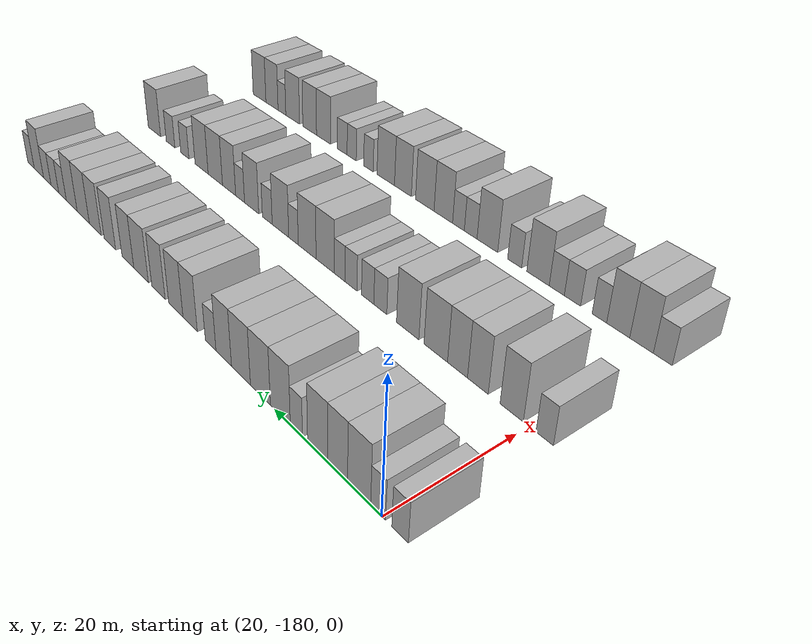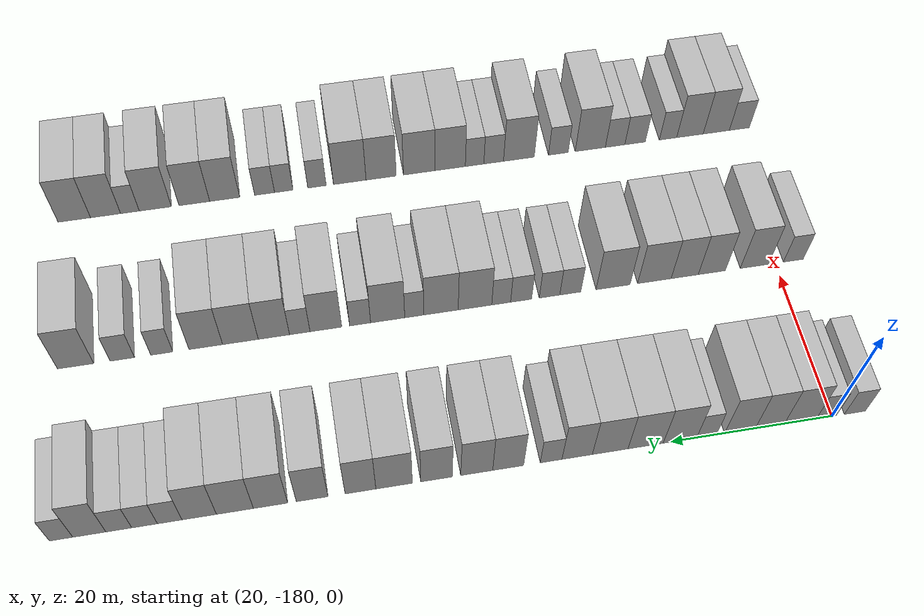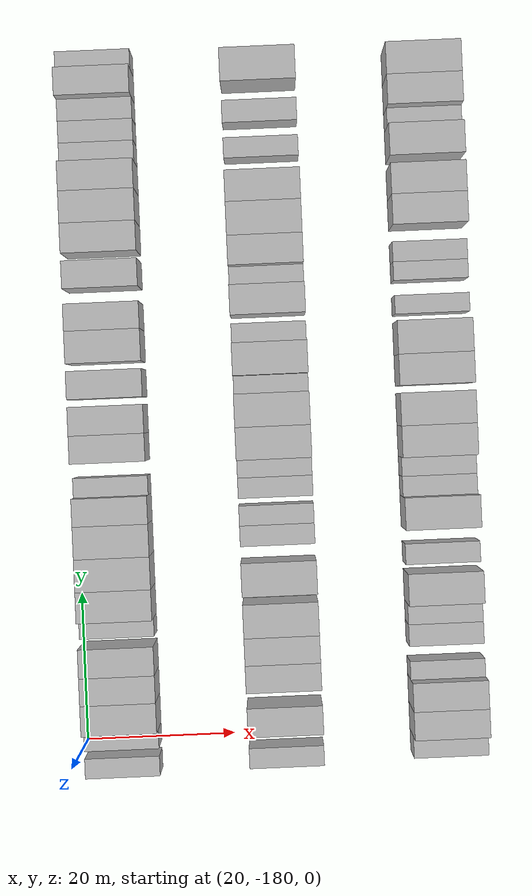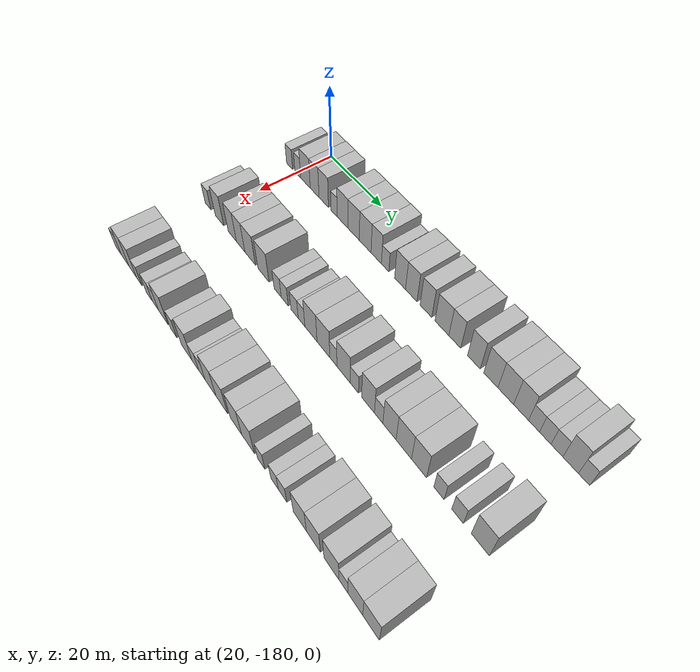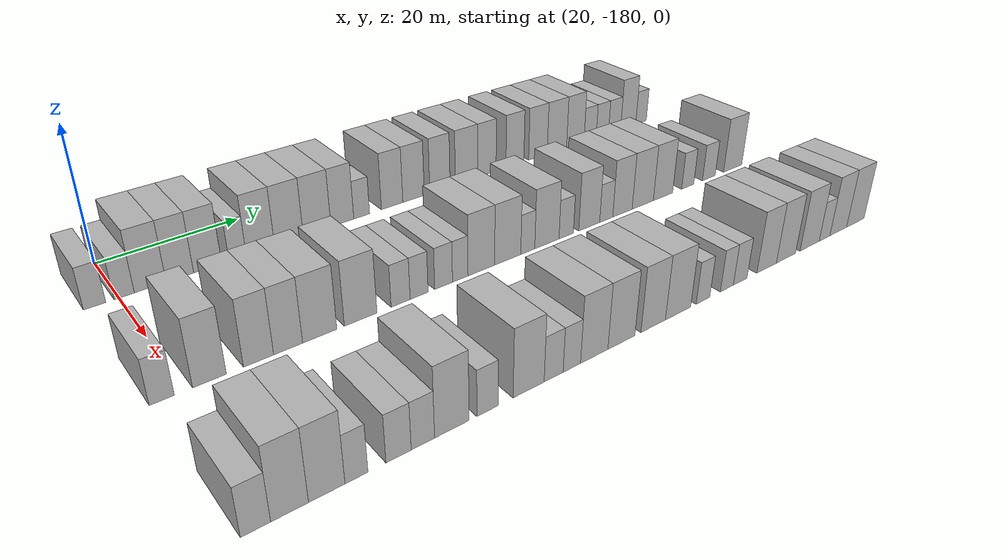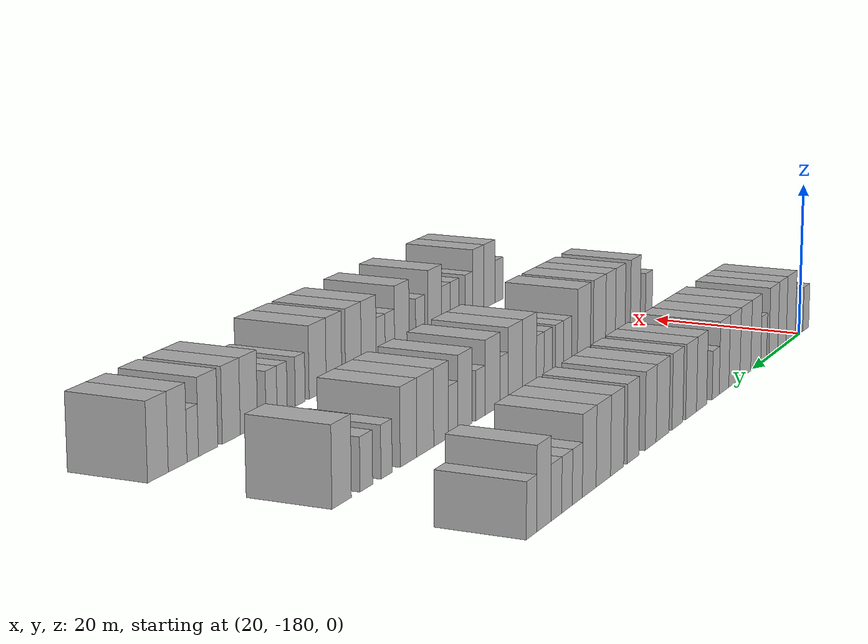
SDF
<sdf version="1.6">
 <world name="default">
  <model name="building_46">
   <static>1</static>
   <pose>25.0000 -182.8993 0 0.000000 0.000000 0.000000</pose>
   <link name="link">
    <pose>0 0 3.00 0 0 0</pose>
    <collision name="collision"><geometry><box><size>10.0000 2.6617 6.0000</size></box></geometry></collision>
    <visual name="visual">
     <cast_shadows>0</cast_shadows>
     <geometry><box><size>10.0000 2.6617 6.0000</size></box></geometry>
     <material>
      <script>
       <uri>model://HANNAS_wall/materials/scripts</uri>
       <uri>model://HANNAS_wall/materials/textures</uri>
       <name>vrc/HANNAS_wall</name>
      </script>
     </material>
    </visual>
   </link>
  </model>
  <model name="building_47">
   <static>1</static>
   <pose>25.0000 -179.3147 0 0.000000 0.000000 0.000000</pose>
   <link name="link">
    <pose>0 0 3.00 0 0 0</pose>
    <collision name="collision"><geometry><box><size>10.0000 2.5074 6.0000</size></box></geometry></collision>
    <visual name="visual">
     <cast_shadows>0</cast_shadows>
     <geometry><box><size>10.0000 2.5074 6.0000</size></box></geometry>
     <material>
      <script>
       <uri>model://HANNAS_wall/materials/scripts</uri>
       <uri>model://HANNAS_wall/materials/textures</uri>
       <name>vrc/HANNAS_wall</name>
      </script>
     </material>
    </visual>
   </link>
  </model>
  <model name="building_48">
   <static>1</static>
   <pose>25.0000 -176.0476 0 0.000000 0.000000 0.000000</pose>
   <link name="link">
    <pose>0 0 4.50 0 0 0</pose>
    <collision name="collision"><geometry><box><size>10.0000 4.0269 9.0000</size></box></geometry></collision>
    <visual name="visual">
     <cast_shadows>0</cast_shadows>
     <geometry><box><size>10.0000 4.0269 9.0000</size></box></geometry>
     <material>
      <script>
       <uri>model://HANNAS_wall/materials/scripts</uri>
       <uri>model://HANNAS_wall/materials/textures</uri>
       <name>vrc/HANNAS_wall</name>
      </script>
     </material>
    </visual>
   </link>
  </model>
  <model name="building_49">
   <static>1</static>
   <pose>25.0000 -172.2188 0 0.000000 0.000000 0.000000</pose>
   <link name="link">
    <pose>0 0 4.50 0 0 0</pose>
    <collision name="collision"><geometry><box><size>10.0000 3.6306 9.0000</size></box></geometry></collision>
    <visual name="visual">
     <cast_shadows>0</cast_shadows>
     <geometry><box><size>10.0000 3.6306 9.0000</size></box></geometry>
     <material>
      <script>
       <uri>model://HANNAS_wall/materials/scripts</uri>
       <uri>model://HANNAS_wall/materials/textures</uri>
       <name>vrc/HANNAS_wall</name>
      </script>
     </material>
    </visual>
   </link>
  </model>
  <model name="building_50">
   <static>1</static>
   <pose>25.0000 -168.4945 0 0.000000 0.000000 0.000000</pose>
   <link name="link">
    <pose>0 0 4.50 0 0 0</pose>
    <collision name="collision"><geometry><box><size>10.0000 3.8180 9.0000</size></box></geometry></collision>
    <visual name="visual">
     <cast_shadows>0</cast_shadows>
     <geometry><box><size>10.0000 3.8180 9.0000</size></box></geometry>
     <material>
      <script>
       <uri>model://HANNAS_wall/materials/scripts</uri>
       <uri>model://HANNAS_wall/materials/textures</uri>
       <name>vrc/HANNAS_wall</name>
      </script>
     </material>
    </visual>
   </link>
  </model>
  <model name="building_51">
   <static>1</static>
   <pose>25.0000 -164.3656 0 0.000000 0.000000 0.000000</pose>
   <link name="link">
    <pose>0 0 3.00 0 0 0</pose>
    <collision name="collision"><geometry><box><size>10.0000 2.4398 6.0000</size></box></geometry></collision>
    <visual name="visual">
     <cast_shadows>0</cast_shadows>
     <geometry><box><size>10.0000 2.4398 6.0000</size></box></geometry>
     <material>
      <script>
       <uri>model://HANNAS_wall/materials/scripts</uri>
       <uri>model://HANNAS_wall/materials/textures</uri>
       <name>vrc/HANNAS_wall</name>
      </script>
     </material>
    </visual>
   </link>
  </model>
  <model name="building_52">
   <static>1</static>
   <pose>25.0000 -161.0876 0 0.000000 0.000000 0.000000</pose>
   <link name="link">
    <pose>0 0 4.50 0 0 0</pose>
    <collision name="collision"><geometry><box><size>10.0000 4.1161 9.0000</size></box></geometry></collision>
    <visual name="visual">
     <cast_shadows>0</cast_shadows>
     <geometry><box><size>10.0000 4.1161 9.0000</size></box></geometry>
     <material>
      <script>
       <uri>model://HANNAS_wall/materials/scripts</uri>
       <uri>model://HANNAS_wall/materials/textures</uri>
       <name>vrc/HANNAS_wall</name>
      </script>
     </material>
    </visual>
   </link>
  </model>
  <model name="building_53">
   <static>1</static>
   <pose>25.0000 -156.8660 0 0.000000 0.000000 0.000000</pose>
   <link name="link">
    <pose>0 0 4.50 0 0 0</pose>
    <collision name="collision"><geometry><box><size>10.0000 4.3272 9.0000</size></box></geometry></collision>
    <visual name="visual">
     <cast_shadows>0</cast_shadows>
     <geometry><box><size>10.0000 4.3272 9.0000</size></box></geometry>
     <material>
      <script>
       <uri>model://HANNAS_wall/materials/scripts</uri>
       <uri>model://HANNAS_wall/materials/textures</uri>
       <name>vrc/HANNAS_wall</name>
      </script>
     </material>
    </visual>
   </link>
  </model>
  <model name="building_54">
   <static>1</static>
   <pose>25.0000 -152.5389 0 0.000000 0.000000 0.000000</pose>
   <link name="link">
    <pose>0 0 4.50 0 0 0</pose>
    <collision name="collision"><geometry><box><size>10.0000 4.3268 9.0000</size></box></geometry></collision>
    <visual name="visual">
     <cast_shadows>0</cast_shadows>
     <geometry><box><size>10.0000 4.3268 9.0000</size></box></geometry>
     <material>
      <script>
       <uri>model://HANNAS_wall/materials/scripts</uri>
       <uri>model://HANNAS_wall/materials/textures</uri>
       <name>vrc/HANNAS_wall</name>
      </script>
     </material>
    </visual>
   </link>
  </model>
  <model name="building_55">
   <static>1</static>
   <pose>25.0000 -148.5316 0 0.000000 0.000000 0.000000</pose>
   <link name="link">
    <pose>0 0 4.50 0 0 0</pose>
    <collision name="collision"><geometry><box><size>10.0000 3.6879 9.0000</size></box></geometry></collision>
    <visual name="visual">
     <cast_shadows>0</cast_shadows>
     <geometry><box><size>10.0000 3.6879 9.0000</size></box></geometry>
     <material>
      <script>
       <uri>model://HANNAS_wall/materials/scripts</uri>
       <uri>model://HANNAS_wall/materials/textures</uri>
       <name>vrc/HANNAS_wall</name>
      </script>
     </material>
    </visual>
   </link>
  </model>
  <model name="building_56">
   <static>1</static>
   <pose>25.0000 -145.3794 0 0.000000 0.000000 0.000000</pose>
   <link name="link">
    <pose>0 0 3.00 0 0 0</pose>
    <collision name="collision"><geometry><box><size>10.0000 2.6166 6.0000</size></box></geometry></collision>
    <visual name="visual">
     <cast_shadows>0</cast_shadows>
     <geometry><box><size>10.0000 2.6166 6.0000</size></box></geometry>
     <material>
      <script>
       <uri>model://HANNAS_wall/materials/scripts</uri>
       <uri>model://HANNAS_wall/materials/textures</uri>
       <name>vrc/HANNAS_wall</name>
      </script>
     </material>
    </visual>
   </link>
  </model>
  <model name="building_57">
   <static>1</static>
   <pose>25.0000 -140.2192 0 0.000000 0.000000 0.000000</pose>
   <link name="link">
    <pose>0 0 4.50 0 0 0</pose>
    <collision name="collision"><geometry><box><size>10.0000 3.7037 9.0000</size></box></geometry></collision>
    <visual name="visual">
     <cast_shadows>0</cast_shadows>
     <geometry><box><size>10.0000 3.7037 9.0000</size></box></geometry>
     <material>
      <script>
       <uri>model://HANNAS_wall/materials/scripts</uri>
       <uri>model://HANNAS_wall/materials/textures</uri>
       <name>vrc/HANNAS_wall</name>
      </script>
     </material>
    </visual>
   </link>
  </model>
  <model name="building_58">
   <static>1</static>
   <pose>25.0000 -136.4579 0 0.000000 0.000000 0.000000</pose>
   <link name="link">
    <pose>0 0 4.50 0 0 0</pose>
    <collision name="collision"><geometry><box><size>10.0000 3.8190 9.0000</size></box></geometry></collision>
    <visual name="visual">
     <cast_shadows>0</cast_shadows>
     <geometry><box><size>10.0000 3.8190 9.0000</size></box></geometry>
     <material>
      <script>
       <uri>model://HANNAS_wall/materials/scripts</uri>
       <uri>model://HANNAS_wall/materials/textures</uri>
       <name>vrc/HANNAS_wall</name>
      </script>
     </material>
    </visual>
   </link>
  </model>
  <model name="building_59">
   <static>1</static>
   <pose>25.0000 -131.6775 0 0.000000 0.000000 0.000000</pose>
   <link name="link">
    <pose>0 0 4.50 0 0 0</pose>
    <collision name="collision"><geometry><box><size>10.0000 3.7417 9.0000</size></box></geometry></collision>
    <visual name="visual">
     <cast_shadows>0</cast_shadows>
     <geometry><box><size>10.0000 3.7417 9.0000</size></box></geometry>
     <material>
      <script>
       <uri>model://HANNAS_wall/materials/scripts</uri>
       <uri>model://HANNAS_wall/materials/textures</uri>
       <name>vrc/HANNAS_wall</name>
      </script>
     </material>
    </visual>
   </link>
  </model>
  <model name="building_60">
   <static>1</static>
   <pose>25.0000 -126.6566 0 0.000000 0.000000 0.000000</pose>
   <link name="link">
    <pose>0 0 4.50 0 0 0</pose>
    <collision name="collision"><geometry><box><size>10.0000 4.3002 9.0000</size></box></geometry></collision>
    <visual name="visual">
     <cast_shadows>0</cast_shadows>
     <geometry><box><size>10.0000 4.3002 9.0000</size></box></geometry>
     <material>
      <script>
       <uri>model://HANNAS_wall/materials/scripts</uri>
       <uri>model://HANNAS_wall/materials/textures</uri>
       <name>vrc/HANNAS_wall</name>
      </script>
     </material>
    </visual>
   </link>
  </model>
  <model name="building_61">
   <static>1</static>
   <pose>25.0000 -122.7015 0 0.000000 0.000000 0.000000</pose>
   <link name="link">
    <pose>0 0 4.50 0 0 0</pose>
    <collision name="collision"><geometry><box><size>10.0000 3.6100 9.0000</size></box></geometry></collision>
    <visual name="visual">
     <cast_shadows>0</cast_shadows>
     <geometry><box><size>10.0000 3.6100 9.0000</size></box></geometry>
     <material>
      <script>
       <uri>model://HANNAS_wall/materials/scripts</uri>
       <uri>model://HANNAS_wall/materials/textures</uri>
       <name>vrc/HANNAS_wall</name>
      </script>
     </material>
    </visual>
   </link>
  </model>
  <model name="building_62">
   <static>1</static>
   <pose>25.0000 -117.0505 0 0.000000 0.000000 0.000000</pose>
   <link name="link">
    <pose>0 0 4.50 0 0 0</pose>
    <collision name="collision"><geometry><box><size>10.0000 3.6919 9.0000</size></box></geometry></collision>
    <visual name="visual">
     <cast_shadows>0</cast_shadows>
     <geometry><box><size>10.0000 3.6919 9.0000</size></box></geometry>
     <material>
      <script>
       <uri>model://HANNAS_wall/materials/scripts</uri>
       <uri>model://HANNAS_wall/materials/textures</uri>
       <name>vrc/HANNAS_wall</name>
      </script>
     </material>
    </visual>
   </link>
  </model>
  <model name="building_63">
   <static>1</static>
   <pose>25.0000 -112.2184 0 0.000000 0.000000 0.000000</pose>
   <link name="link">
    <pose>0 0 4.50 0 0 0</pose>
    <collision name="collision"><geometry><box><size>10.0000 3.9724 9.0000</size></box></geometry></collision>
    <visual name="visual">
     <cast_shadows>0</cast_shadows>
     <geometry><box><size>10.0000 3.9724 9.0000</size></box></geometry>
     <material>
      <script>
       <uri>model://HANNAS_wall/materials/scripts</uri>
       <uri>model://HANNAS_wall/materials/textures</uri>
       <name>vrc/HANNAS_wall</name>
      </script>
     </material>
    </visual>
   </link>
  </model>
  <model name="building_64">
   <static>1</static>
   <pose>25.0000 -108.1017 0 0.000000 0.000000 0.000000</pose>
   <link name="link">
    <pose>0 0 4.50 0 0 0</pose>
    <collision name="collision"><geometry><box><size>10.0000 4.2609 9.0000</size></box></geometry></collision>
    <visual name="visual">
     <cast_shadows>0</cast_shadows>
     <geometry><box><size>10.0000 4.2609 9.0000</size></box></geometry>
     <material>
      <script>
       <uri>model://HANNAS_wall/materials/scripts</uri>
       <uri>model://HANNAS_wall/materials/textures</uri>
       <name>vrc/HANNAS_wall</name>
      </script>
     </material>
    </visual>
   </link>
  </model>
  <model name="building_65">
   <static>1</static>
   <pose>25.0000 -104.0001 0 0.000000 0.000000 0.000000</pose>
   <link name="link">
    <pose>0 0 4.50 0 0 0</pose>
    <collision name="collision"><geometry><box><size>10.0000 3.9425 9.0000</size></box></geometry></collision>
    <visual name="visual">
     <cast_shadows>0</cast_shadows>
     <geometry><box><size>10.0000 3.9425 9.0000</size></box></geometry>
     <material>
      <script>
       <uri>model://HANNAS_wall/materials/scripts</uri>
       <uri>model://HANNAS_wall/materials/textures</uri>
       <name>vrc/HANNAS_wall</name>
      </script>
     </material>
    </visual>
   </link>
  </model>
  <model name="building_66">
   <static>1</static>
   <pose>25.0000 -100.6204 0 0.000000 0.000000 0.000000</pose>
   <link name="link">
    <pose>0 0 3.00 0 0 0</pose>
    <collision name="collision"><geometry><box><size>10.0000 2.8168 6.0000</size></box></geometry></collision>
    <visual name="visual">
     <cast_shadows>0</cast_shadows>
     <geometry><box><size>10.0000 2.8168 6.0000</size></box></geometry>
     <material>
      <script>
       <uri>model://HANNAS_wall/materials/scripts</uri>
       <uri>model://HANNAS_wall/materials/textures</uri>
       <name>vrc/HANNAS_wall</name>
      </script>
     </material>
    </visual>
   </link>
  </model>
  <model name="building_67">
   <static>1</static>
   <pose>25.0000 -97.7553 0 0.000000 0.000000 0.000000</pose>
   <link name="link">
    <pose>0 0 3.00 0 0 0</pose>
    <collision name="collision"><geometry><box><size>10.0000 2.9135 6.0000</size></box></geometry></collision>
    <visual name="visual">
     <cast_shadows>0</cast_shadows>
     <geometry><box><size>10.0000 2.9135 6.0000</size></box></geometry>
     <material>
      <script>
       <uri>model://HANNAS_wall/materials/scripts</uri>
       <uri>model://HANNAS_wall/materials/textures</uri>
       <name>vrc/HANNAS_wall</name>
      </script>
     </material>
    </visual>
   </link>
  </model>
  <model name="building_68">
   <static>1</static>
   <pose>25.0000 -94.8350 0 0.000000 0.000000 0.000000</pose>
   <link name="link">
    <pose>0 0 3.00 0 0 0</pose>
    <collision name="collision"><geometry><box><size>10.0000 2.9271 6.0000</size></box></geometry></collision>
    <visual name="visual">
     <cast_shadows>0</cast_shadows>
     <geometry><box><size>10.0000 2.9271 6.0000</size></box></geometry>
     <material>
      <script>
       <uri>model://HANNAS_wall/materials/scripts</uri>
       <uri>model://HANNAS_wall/materials/textures</uri>
       <name>vrc/HANNAS_wall</name>
      </script>
     </material>
    </visual>
   </link>
  </model>
  <model name="building_69">
   <static>1</static>
   <pose>25.0000 -91.5054 0 0.000000 0.000000 0.000000</pose>
   <link name="link">
    <pose>0 0 4.50 0 0 0</pose>
    <collision name="collision"><geometry><box><size>10.0000 3.7321 9.0000</size></box></geometry></collision>
    <visual name="visual">
     <cast_shadows>0</cast_shadows>
     <geometry><box><size>10.0000 3.7321 9.0000</size></box></geometry>
     <material>
      <script>
       <uri>model://HANNAS_wall/materials/scripts</uri>
       <uri>model://HANNAS_wall/materials/textures</uri>
       <name>vrc/HANNAS_wall</name>
      </script>
     </material>
    </visual>
   </link>
  </model>
  <model name="building_70">
   <static>1</static>
   <pose>25.0000 -88.3182 0 0.000000 0.000000 0.000000</pose>
   <link name="link">
    <pose>0 0 3.00 0 0 0</pose>
    <collision name="collision"><geometry><box><size>10.0000 2.6423 6.0000</size></box></geometry></collision>
    <visual name="visual">
     <cast_shadows>0</cast_shadows>
     <geometry><box><size>10.0000 2.6423 6.0000</size></box></geometry>
     <material>
      <script>
       <uri>model://HANNAS_wall/materials/scripts</uri>
       <uri>model://HANNAS_wall/materials/textures</uri>
       <name>vrc/HANNAS_wall</name>
      </script>
     </material>
    </visual>
   </link>
  </model>
  <model name="building_238">
   <static>1</static>
   <pose>47.0000 -182.4558 0 0.000000 0.000000 0.000000</pose>
   <link name="link">
    <pose>0 0 3.00 0 0 0</pose>
    <collision name="collision"><geometry><box><size>10.0000 2.6961 6.0000</size></box></geometry></collision>
    <visual name="visual">
     <cast_shadows>0</cast_shadows>
     <geometry><box><size>10.0000 2.6961 6.0000</size></box></geometry>
     <material>
      <script>
       <uri>model://HANNAS_wall/materials/scripts</uri>
       <uri>model://HANNAS_wall/materials/textures</uri>
       <name>vrc/HANNAS_wall</name>
      </script>
     </material>
    </visual>
   </link>
  </model>
  <model name="building_239">
   <static>1</static>
   <pose>47.0000 -177.1988 0 0.000000 0.000000 0.000000</pose>
   <link name="link">
    <pose>0 0 4.50 0 0 0</pose>
    <collision name="collision"><geometry><box><size>10.0000 3.8179 9.0000</size></box></geometry></collision>
    <visual name="visual">
     <cast_shadows>0</cast_shadows>
     <geometry><box><size>10.0000 3.8179 9.0000</size></box></geometry>
     <material>
      <script>
       <uri>model://HANNAS_wall/materials/scripts</uri>
       <uri>model://HANNAS_wall/materials/textures</uri>
       <name>vrc/HANNAS_wall</name>
      </script>
     </material>
    </visual>
   </link>
  </model>
  <model name="building_240">
   <static>1</static>
   <pose>47.0000 -171.4779 0 0.000000 0.000000 0.000000</pose>
   <link name="link">
    <pose>0 0 4.50 0 0 0</pose>
    <collision name="collision"><geometry><box><size>10.0000 3.6240 9.0000</size></box></geometry></collision>
    <visual name="visual">
     <cast_shadows>0</cast_shadows>
     <geometry><box><size>10.0000 3.6240 9.0000</size></box></geometry>
     <material>
      <script>
       <uri>model://HANNAS_wall/materials/scripts</uri>
       <uri>model://HANNAS_wall/materials/textures</uri>
       <name>vrc/HANNAS_wall</name>
      </script>
     </material>
    </visual>
   </link>
  </model>
  <model name="building_241">
   <static>1</static>
   <pose>47.0000 -167.8575 0 0.000000 0.000000 0.000000</pose>
   <link name="link">
    <pose>0 0 4.50 0 0 0</pose>
    <collision name="collision"><geometry><box><size>10.0000 3.6168 9.0000</size></box></geometry></collision>
    <visual name="visual">
     <cast_shadows>0</cast_shadows>
     <geometry><box><size>10.0000 3.6168 9.0000</size></box></geometry>
     <material>
      <script>
       <uri>model://HANNAS_wall/materials/scripts</uri>
       <uri>model://HANNAS_wall/materials/textures</uri>
       <name>vrc/HANNAS_wall</name>
      </script>
     </material>
    </visual>
   </link>
  </model>
  <model name="building_242">
   <static>1</static>
   <pose>47.0000 -163.8237 0 0.000000 0.000000 0.000000</pose>
   <link name="link">
    <pose>0 0 4.50 0 0 0</pose>
    <collision name="collision"><geometry><box><size>10.0000 4.4508 9.0000</size></box></geometry></collision>
    <visual name="visual">
     <cast_shadows>0</cast_shadows>
     <geometry><box><size>10.0000 4.4508 9.0000</size></box></geometry>
     <material>
      <script>
       <uri>model://HANNAS_wall/materials/scripts</uri>
       <uri>model://HANNAS_wall/materials/textures</uri>
       <name>vrc/HANNAS_wall</name>
      </script>
     </material>
    </visual>
   </link>
  </model>
  <model name="building_243">
   <static>1</static>
   <pose>47.0000 -158.3575 0 0.000000 0.000000 0.000000</pose>
   <link name="link">
    <pose>0 0 4.50 0 0 0</pose>
    <collision name="collision"><geometry><box><size>10.0000 4.4817 9.0000</size></box></geometry></collision>
    <visual name="visual">
     <cast_shadows>0</cast_shadows>
     <geometry><box><size>10.0000 4.4817 9.0000</size></box></geometry>
     <material>
      <script>
       <uri>model://HANNAS_wall/materials/scripts</uri>
       <uri>model://HANNAS_wall/materials/textures</uri>
       <name>vrc/HANNAS_wall</name>
      </script>
     </material>
    </visual>
   </link>
  </model>
  <model name="building_244">
   <static>1</static>
   <pose>47.0000 -152.7361 0 0.000000 0.000000 0.000000</pose>
   <link name="link">
    <pose>0 0 3.00 0 0 0</pose>
    <collision name="collision"><geometry><box><size>10.0000 2.7611 6.0000</size></box></geometry></collision>
    <visual name="visual">
     <cast_shadows>0</cast_shadows>
     <geometry><box><size>10.0000 2.7611 6.0000</size></box></geometry>
     <material>
      <script>
       <uri>model://HANNAS_wall/materials/scripts</uri>
       <uri>model://HANNAS_wall/materials/textures</uri>
       <name>vrc/HANNAS_wall</name>
      </script>
     </material>
    </visual>
   </link>
  </model>
  <model name="building_245">
   <static>1</static>
   <pose>47.0000 -150.0182 0 0.000000 0.000000 0.000000</pose>
   <link name="link">
    <pose>0 0 3.00 0 0 0</pose>
    <collision name="collision"><geometry><box><size>10.0000 2.6747 6.0000</size></box></geometry></collision>
    <visual name="visual">
     <cast_shadows>0</cast_shadows>
     <geometry><box><size>10.0000 2.6747 6.0000</size></box></geometry>
     <material>
      <script>
       <uri>model://HANNAS_wall/materials/scripts</uri>
       <uri>model://HANNAS_wall/materials/textures</uri>
       <name>vrc/HANNAS_wall</name>
      </script>
     </material>
    </visual>
   </link>
  </model>
  <model name="building_246">
   <static>1</static>
   <pose>47.0000 -146.3150 0 0.000000 0.000000 0.000000</pose>
   <link name="link">
    <pose>0 0 3.00 0 0 0</pose>
    <collision name="collision"><geometry><box><size>10.0000 2.7317 6.0000</size></box></geometry></collision>
    <visual name="visual">
     <cast_shadows>0</cast_shadows>
     <geometry><box><size>10.0000 2.7317 6.0000</size></box></geometry>
     <material>
      <script>
       <uri>model://HANNAS_wall/materials/scripts</uri>
       <uri>model://HANNAS_wall/materials/textures</uri>
       <name>vrc/HANNAS_wall</name>
      </script>
     </material>
    </visual>
   </link>
  </model>
  <model name="building_247">
   <static>1</static>
   <pose>47.0000 -143.7293 0 0.000000 0.000000 0.000000</pose>
   <link name="link">
    <pose>0 0 3.00 0 0 0</pose>
    <collision name="collision"><geometry><box><size>10.0000 2.4397 6.0000</size></box></geometry></collision>
    <visual name="visual">
     <cast_shadows>0</cast_shadows>
     <geometry><box><size>10.0000 2.4397 6.0000</size></box></geometry>
     <material>
      <script>
       <uri>model://HANNAS_wall/materials/scripts</uri>
       <uri>model://HANNAS_wall/materials/textures</uri>
       <name>vrc/HANNAS_wall</name>
      </script>
     </material>
    </visual>
   </link>
  </model>
  <model name="building_248">
   <static>1</static>
   <pose>47.0000 -140.3393 0 0.000000 0.000000 0.000000</pose>
   <link name="link">
    <pose>0 0 4.50 0 0 0</pose>
    <collision name="collision"><geometry><box><size>10.0000 4.3402 9.0000</size></box></geometry></collision>
    <visual name="visual">
     <cast_shadows>0</cast_shadows>
     <geometry><box><size>10.0000 4.3402 9.0000</size></box></geometry>
     <material>
      <script>
       <uri>model://HANNAS_wall/materials/scripts</uri>
       <uri>model://HANNAS_wall/materials/textures</uri>
       <name>vrc/HANNAS_wall</name>
      </script>
     </material>
    </visual>
   </link>
  </model>
  <model name="building_249">
   <static>1</static>
   <pose>47.0000 -135.9566 0 0.000000 0.000000 0.000000</pose>
   <link name="link">
    <pose>0 0 4.50 0 0 0</pose>
    <collision name="collision"><geometry><box><size>10.0000 4.4250 9.0000</size></box></geometry></collision>
    <visual name="visual">
     <cast_shadows>0</cast_shadows>
     <geometry><box><size>10.0000 4.4250 9.0000</size></box></geometry>
     <material>
      <script>
       <uri>model://HANNAS_wall/materials/scripts</uri>
       <uri>model://HANNAS_wall/materials/textures</uri>
       <name>vrc/HANNAS_wall</name>
      </script>
     </material>
    </visual>
   </link>
  </model>
  <model name="building_250">
   <static>1</static>
   <pose>47.0000 -132.5287 0 0.000000 0.000000 0.000000</pose>
   <link name="link">
    <pose>0 0 3.00 0 0 0</pose>
    <collision name="collision"><geometry><box><size>10.0000 2.4309 6.0000</size></box></geometry></collision>
    <visual name="visual">
     <cast_shadows>0</cast_shadows>
     <geometry><box><size>10.0000 2.4309 6.0000</size></box></geometry>
     <material>
      <script>
       <uri>model://HANNAS_wall/materials/scripts</uri>
       <uri>model://HANNAS_wall/materials/textures</uri>
       <name>vrc/HANNAS_wall</name>
      </script>
     </material>
    </visual>
   </link>
  </model>
  <model name="building_251">
   <static>1</static>
   <pose>47.0000 -129.1371 0 0.000000 0.000000 0.000000</pose>
   <link name="link">
    <pose>0 0 4.50 0 0 0</pose>
    <collision name="collision"><geometry><box><size>10.0000 4.3522 9.0000</size></box></geometry></collision>
    <visual name="visual">
     <cast_shadows>0</cast_shadows>
     <geometry><box><size>10.0000 4.3522 9.0000</size></box></geometry>
     <material>
      <script>
       <uri>model://HANNAS_wall/materials/scripts</uri>
       <uri>model://HANNAS_wall/materials/textures</uri>
       <name>vrc/HANNAS_wall</name>
      </script>
     </material>
    </visual>
   </link>
  </model>
  <model name="building_252">
   <static>1</static>
   <pose>47.0000 -125.6291 0 0.000000 0.000000 0.000000</pose>
   <link name="link">
    <pose>0 0 3.00 0 0 0</pose>
    <collision name="collision"><geometry><box><size>10.0000 2.6638 6.0000</size></box></geometry></collision>
    <visual name="visual">
     <cast_shadows>0</cast_shadows>
     <geometry><box><size>10.0000 2.6638 6.0000</size></box></geometry>
     <material>
      <script>
       <uri>model://HANNAS_wall/materials/scripts</uri>
       <uri>model://HANNAS_wall/materials/textures</uri>
       <name>vrc/HANNAS_wall</name>
      </script>
     </material>
    </visual>
   </link>
  </model>
  <model name="building_253">
   <static>1</static>
   <pose>47.0000 -121.2915 0 0.000000 0.000000 0.000000</pose>
   <link name="link">
    <pose>0 0 4.50 0 0 0</pose>
    <collision name="collision"><geometry><box><size>10.0000 4.0115 9.0000</size></box></geometry></collision>
    <visual name="visual">
     <cast_shadows>0</cast_shadows>
     <geometry><box><size>10.0000 4.0115 9.0000</size></box></geometry>
     <material>
      <script>
       <uri>model://HANNAS_wall/materials/scripts</uri>
       <uri>model://HANNAS_wall/materials/textures</uri>
       <name>vrc/HANNAS_wall</name>
      </script>
     </material>
    </visual>
   </link>
  </model>
  <model name="building_254">
   <static>1</static>
   <pose>47.0000 -117.9971 0 0.000000 0.000000 0.000000</pose>
   <link name="link">
    <pose>0 0 3.00 0 0 0</pose>
    <collision name="collision"><geometry><box><size>10.0000 2.5772 6.0000</size></box></geometry></collision>
    <visual name="visual">
     <cast_shadows>0</cast_shadows>
     <geometry><box><size>10.0000 2.5772 6.0000</size></box></geometry>
     <material>
      <script>
       <uri>model://HANNAS_wall/materials/scripts</uri>
       <uri>model://HANNAS_wall/materials/textures</uri>
       <name>vrc/HANNAS_wall</name>
      </script>
     </material>
    </visual>
   </link>
  </model>
  <model name="building_255">
   <static>1</static>
   <pose>47.0000 -114.7438 0 0.000000 0.000000 0.000000</pose>
   <link name="link">
    <pose>0 0 4.50 0 0 0</pose>
    <collision name="collision"><geometry><box><size>10.0000 3.9295 9.0000</size></box></geometry></collision>
    <visual name="visual">
     <cast_shadows>0</cast_shadows>
     <geometry><box><size>10.0000 3.9295 9.0000</size></box></geometry>
     <material>
      <script>
       <uri>model://HANNAS_wall/materials/scripts</uri>
       <uri>model://HANNAS_wall/materials/textures</uri>
       <name>vrc/HANNAS_wall</name>
      </script>
     </material>
    </visual>
   </link>
  </model>
  <model name="building_256">
   <static>1</static>
   <pose>47.0000 -110.5578 0 0.000000 0.000000 0.000000</pose>
   <link name="link">
    <pose>0 0 4.50 0 0 0</pose>
    <collision name="collision"><geometry><box><size>10.0000 4.4425 9.0000</size></box></geometry></collision>
    <visual name="visual">
     <cast_shadows>0</cast_shadows>
     <geometry><box><size>10.0000 4.4425 9.0000</size></box></geometry>
     <material>
      <script>
       <uri>model://HANNAS_wall/materials/scripts</uri>
       <uri>model://HANNAS_wall/materials/textures</uri>
       <name>vrc/HANNAS_wall</name>
      </script>
     </material>
    </visual>
   </link>
  </model>
  <model name="building_257">
   <static>1</static>
   <pose>47.0000 -106.2448 0 0.000000 0.000000 0.000000</pose>
   <link name="link">
    <pose>0 0 4.50 0 0 0</pose>
    <collision name="collision"><geometry><box><size>10.0000 4.1835 9.0000</size></box></geometry></collision>
    <visual name="visual">
     <cast_shadows>0</cast_shadows>
     <geometry><box><size>10.0000 4.1835 9.0000</size></box></geometry>
     <material>
      <script>
       <uri>model://HANNAS_wall/materials/scripts</uri>
       <uri>model://HANNAS_wall/materials/textures</uri>
       <name>vrc/HANNAS_wall</name>
      </script>
     </material>
    </visual>
   </link>
  </model>
  <model name="building_258">
   <static>1</static>
   <pose>47.0000 -100.7894 0 0.000000 0.000000 0.000000</pose>
   <link name="link">
    <pose>0 0 3.00 0 0 0</pose>
    <collision name="collision"><geometry><box><size>10.0000 2.7273 6.0000</size></box></geometry></collision>
    <visual name="visual">
     <cast_shadows>0</cast_shadows>
     <geometry><box><size>10.0000 2.7273 6.0000</size></box></geometry>
     <material>
      <script>
       <uri>model://HANNAS_wall/materials/scripts</uri>
       <uri>model://HANNAS_wall/materials/textures</uri>
       <name>vrc/HANNAS_wall</name>
      </script>
     </material>
    </visual>
   </link>
  </model>
  <model name="building_259">
   <static>1</static>
   <pose>47.0000 -95.9291 0 0.000000 0.000000 0.000000</pose>
   <link name="link">
    <pose>0 0 3.00 0 0 0</pose>
    <collision name="collision"><geometry><box><size>10.0000 2.9934 6.0000</size></box></geometry></collision>
    <visual name="visual">
     <cast_shadows>0</cast_shadows>
     <geometry><box><size>10.0000 2.9934 6.0000</size></box></geometry>
     <material>
      <script>
       <uri>model://HANNAS_wall/materials/scripts</uri>
       <uri>model://HANNAS_wall/materials/textures</uri>
       <name>vrc/HANNAS_wall</name>
      </script>
     </material>
    </visual>
   </link>
  </model>
  <model name="building_260">
   <static>1</static>
   <pose>47.0000 -90.2162 0 0.000000 0.000000 0.000000</pose>
   <link name="link">
    <pose>0 0 4.50 0 0 0</pose>
    <collision name="collision"><geometry><box><size>10.0000 4.4324 9.0000</size></box></geometry></collision>
    <visual name="visual">
     <cast_shadows>0</cast_shadows>
     <geometry><box><size>10.0000 4.4324 9.0000</size></box></geometry>
     <material>
      <script>
       <uri>model://HANNAS_wall/materials/scripts</uri>
       <uri>model://HANNAS_wall/materials/textures</uri>
       <name>vrc/HANNAS_wall</name>
      </script>
     </material>
    </visual>
   </link>
  </model>
  <model name="building_436">
   <static>1</static>
   <pose>69.0000 -181.9013 0 0.000000 0.000000 0.000000</pose>
   <link name="link">
    <pose>0 0 3.00 0 0 0</pose>
    <collision name="collision"><geometry><box><size>10.0000 2.8965 6.0000</size></box></geometry></collision>
    <visual name="visual">
     <cast_shadows>0</cast_shadows>
     <geometry><box><size>10.0000 2.8965 6.0000</size></box></geometry>
     <material>
      <script>
       <uri>model://HANNAS_wall/materials/scripts</uri>
       <uri>model://HANNAS_wall/materials/textures</uri>
       <name>vrc/HANNAS_wall</name>
      </script>
     </material>
    </visual>
   </link>
  </model>
  <model name="building_437">
   <static>1</static>
   <pose>69.0000 -178.5755 0 0.000000 0.000000 0.000000</pose>
   <link name="link">
    <pose>0 0 4.50 0 0 0</pose>
    <collision name="collision"><geometry><box><size>10.0000 3.7552 9.0000</size></box></geometry></collision>
    <visual name="visual">
     <cast_shadows>0</cast_shadows>
     <geometry><box><size>10.0000 3.7552 9.0000</size></box></geometry>
     <material>
      <script>
       <uri>model://HANNAS_wall/materials/scripts</uri>
       <uri>model://HANNAS_wall/materials/textures</uri>
       <name>vrc/HANNAS_wall</name>
      </script>
     </material>
    </visual>
   </link>
  </model>
  <model name="building_438">
   <static>1</static>
   <pose>69.0000 -174.7953 0 0.000000 0.000000 0.000000</pose>
   <link name="link">
    <pose>0 0 4.50 0 0 0</pose>
    <collision name="collision"><geometry><box><size>10.0000 3.8051 9.0000</size></box></geometry></collision>
    <visual name="visual">
     <cast_shadows>0</cast_shadows>
     <geometry><box><size>10.0000 3.8051 9.0000</size></box></geometry>
     <material>
      <script>
       <uri>model://HANNAS_wall/materials/scripts</uri>
       <uri>model://HANNAS_wall/materials/textures</uri>
       <name>vrc/HANNAS_wall</name>
      </script>
     </material>
    </visual>
   </link>
  </model>
  <model name="building_439">
   <static>1</static>
   <pose>69.0000 -171.6508 0 0.000000 0.000000 0.000000</pose>
   <link name="link">
    <pose>0 0 3.00 0 0 0</pose>
    <collision name="collision"><geometry><box><size>10.0000 2.4840 6.0000</size></box></geometry></collision>
    <visual name="visual">
     <cast_shadows>0</cast_shadows>
     <geometry><box><size>10.0000 2.4840 6.0000</size></box></geometry>
     <material>
      <script>
       <uri>model://HANNAS_wall/materials/scripts</uri>
       <uri>model://HANNAS_wall/materials/textures</uri>
       <name>vrc/HANNAS_wall</name>
      </script>
     </material>
    </visual>
   </link>
  </model>
  <model name="building_440">
   <static>1</static>
   <pose>69.0000 -166.9548 0 0.000000 0.000000 0.000000</pose>
   <link name="link">
    <pose>0 0 3.00 0 0 0</pose>
    <collision name="collision"><geometry><box><size>10.0000 2.9080 6.0000</size></box></geometry></collision>
    <visual name="visual">
     <cast_shadows>0</cast_shadows>
     <geometry><box><size>10.0000 2.9080 6.0000</size></box></geometry>
     <material>
      <script>
       <uri>model://HANNAS_wall/materials/scripts</uri>
       <uri>model://HANNAS_wall/materials/textures</uri>
       <name>vrc/HANNAS_wall</name>
      </script>
     </material>
    </visual>
   </link>
  </model>
  <model name="building_441">
   <static>1</static>
   <pose>69.0000 -164.1158 0 0.000000 0.000000 0.000000</pose>
   <link name="link">
    <pose>0 0 3.00 0 0 0</pose>
    <collision name="collision"><geometry><box><size>10.0000 2.7699 6.0000</size></box></geometry></collision>
    <visual name="visual">
     <cast_shadows>0</cast_shadows>
     <geometry><box><size>10.0000 2.7699 6.0000</size></box></geometry>
     <material>
      <script>
       <uri>model://HANNAS_wall/materials/scripts</uri>
       <uri>model://HANNAS_wall/materials/textures</uri>
       <name>vrc/HANNAS_wall</name>
      </script>
     </material>
    </visual>
   </link>
  </model>
  <model name="building_442">
   <static>1</static>
   <pose>69.0000 -160.6015 0 0.000000 0.000000 0.000000</pose>
   <link name="link">
    <pose>0 0 4.50 0 0 0</pose>
    <collision name="collision"><geometry><box><size>10.0000 4.2587 9.0000</size></box></geometry></collision>
    <visual name="visual">
     <cast_shadows>0</cast_shadows>
     <geometry><box><size>10.0000 4.2587 9.0000</size></box></geometry>
     <material>
      <script>
       <uri>model://HANNAS_wall/materials/scripts</uri>
       <uri>model://HANNAS_wall/materials/textures</uri>
       <name>vrc/HANNAS_wall</name>
      </script>
     </material>
    </visual>
   </link>
  </model>
  <model name="building_443">
   <static>1</static>
   <pose>69.0000 -156.0862 0 0.000000 0.000000 0.000000</pose>
   <link name="link">
    <pose>0 0 3.00 0 0 0</pose>
    <collision name="collision"><geometry><box><size>10.0000 2.7719 6.0000</size></box></geometry></collision>
    <visual name="visual">
     <cast_shadows>0</cast_shadows>
     <geometry><box><size>10.0000 2.7719 6.0000</size></box></geometry>
     <material>
      <script>
       <uri>model://HANNAS_wall/materials/scripts</uri>
       <uri>model://HANNAS_wall/materials/textures</uri>
       <name>vrc/HANNAS_wall</name>
      </script>
     </material>
    </visual>
   </link>
  </model>
  <model name="building_444">
   <static>1</static>
   <pose>69.0000 -150.5492 0 0.000000 0.000000 0.000000</pose>
   <link name="link">
    <pose>0 0 4.50 0 0 0</pose>
    <collision name="collision"><geometry><box><size>10.0000 4.3021 9.0000</size></box></geometry></collision>
    <visual name="visual">
     <cast_shadows>0</cast_shadows>
     <geometry><box><size>10.0000 4.3021 9.0000</size></box></geometry>
     <material>
      <script>
       <uri>model://HANNAS_wall/materials/scripts</uri>
       <uri>model://HANNAS_wall/materials/textures</uri>
       <name>vrc/HANNAS_wall</name>
      </script>
     </material>
    </visual>
   </link>
  </model>
  <model name="building_445">
   <static>1</static>
   <pose>69.0000 -147.0320 0 0.000000 0.000000 0.000000</pose>
   <link name="link">
    <pose>0 0 3.00 0 0 0</pose>
    <collision name="collision"><geometry><box><size>10.0000 2.7322 6.0000</size></box></geometry></collision>
    <visual name="visual">
     <cast_shadows>0</cast_shadows>
     <geometry><box><size>10.0000 2.7322 6.0000</size></box></geometry>
     <material>
      <script>
       <uri>model://HANNAS_wall/materials/scripts</uri>
       <uri>model://HANNAS_wall/materials/textures</uri>
       <name>vrc/HANNAS_wall</name>
      </script>
     </material>
    </visual>
   </link>
  </model>
  <model name="building_446">
   <static>1</static>
   <pose>69.0000 -144.3761 0 0.000000 0.000000 0.000000</pose>
   <link name="link">
    <pose>0 0 3.00 0 0 0</pose>
    <collision name="collision"><geometry><box><size>10.0000 2.5797 6.0000</size></box></geometry></collision>
    <visual name="visual">
     <cast_shadows>0</cast_shadows>
     <geometry><box><size>10.0000 2.5797 6.0000</size></box></geometry>
     <material>
      <script>
       <uri>model://HANNAS_wall/materials/scripts</uri>
       <uri>model://HANNAS_wall/materials/textures</uri>
       <name>vrc/HANNAS_wall</name>
      </script>
     </material>
    </visual>
   </link>
  </model>
  <model name="building_447">
   <static>1</static>
   <pose>69.0000 -140.9877 0 0.000000 0.000000 0.000000</pose>
   <link name="link">
    <pose>0 0 4.50 0 0 0</pose>
    <collision name="collision"><geometry><box><size>10.0000 4.1972 9.0000</size></box></geometry></collision>
    <visual name="visual">
     <cast_shadows>0</cast_shadows>
     <geometry><box><size>10.0000 4.1972 9.0000</size></box></geometry>
     <material>
      <script>
       <uri>model://HANNAS_wall/materials/scripts</uri>
       <uri>model://HANNAS_wall/materials/textures</uri>
       <name>vrc/HANNAS_wall</name>
      </script>
     </material>
    </visual>
   </link>
  </model>
  <model name="building_448">
   <static>1</static>
   <pose>69.0000 -136.7167 0 0.000000 0.000000 0.000000</pose>
   <link name="link">
    <pose>0 0 4.50 0 0 0</pose>
    <collision name="collision"><geometry><box><size>10.0000 4.3448 9.0000</size></box></geometry></collision>
    <visual name="visual">
     <cast_shadows>0</cast_shadows>
     <geometry><box><size>10.0000 4.3448 9.0000</size></box></geometry>
     <material>
      <script>
       <uri>model://HANNAS_wall/materials/scripts</uri>
       <uri>model://HANNAS_wall/materials/textures</uri>
       <name>vrc/HANNAS_wall</name>
      </script>
     </material>
    </visual>
   </link>
  </model>
  <model name="building_449">
   <static>1</static>
   <pose>69.0000 -131.4764 0 0.000000 0.000000 0.000000</pose>
   <link name="link">
    <pose>0 0 4.50 0 0 0</pose>
    <collision name="collision"><geometry><box><size>10.0000 4.1359 9.0000</size></box></geometry></collision>
    <visual name="visual">
     <cast_shadows>0</cast_shadows>
     <geometry><box><size>10.0000 4.1359 9.0000</size></box></geometry>
     <material>
      <script>
       <uri>model://HANNAS_wall/materials/scripts</uri>
       <uri>model://HANNAS_wall/materials/textures</uri>
       <name>vrc/HANNAS_wall</name>
      </script>
     </material>
    </visual>
   </link>
  </model>
  <model name="building_450">
   <static>1</static>
   <pose>69.0000 -127.1870 0 0.000000 0.000000 0.000000</pose>
   <link name="link">
    <pose>0 0 4.50 0 0 0</pose>
    <collision name="collision"><geometry><box><size>10.0000 4.4429 9.0000</size></box></geometry></collision>
    <visual name="visual">
     <cast_shadows>0</cast_shadows>
     <geometry><box><size>10.0000 4.4429 9.0000</size></box></geometry>
     <material>
      <script>
       <uri>model://HANNAS_wall/materials/scripts</uri>
       <uri>model://HANNAS_wall/materials/textures</uri>
       <name>vrc/HANNAS_wall</name>
      </script>
     </material>
    </visual>
   </link>
  </model>
  <model name="building_451">
   <static>1</static>
   <pose>69.0000 -122.7151 0 0.000000 0.000000 0.000000</pose>
   <link name="link">
    <pose>0 0 3.00 0 0 0</pose>
    <collision name="collision"><geometry><box><size>10.0000 2.5009 6.0000</size></box></geometry></collision>
    <visual name="visual">
     <cast_shadows>0</cast_shadows>
     <geometry><box><size>10.0000 2.5009 6.0000</size></box></geometry>
     <material>
      <script>
       <uri>model://HANNAS_wall/materials/scripts</uri>
       <uri>model://HANNAS_wall/materials/textures</uri>
       <name>vrc/HANNAS_wall</name>
      </script>
     </material>
    </visual>
   </link>
  </model>
  <model name="building_452">
   <static>1</static>
   <pose>69.0000 -118.2182 0 0.000000 0.000000 0.000000</pose>
   <link name="link">
    <pose>0 0 3.00 0 0 0</pose>
    <collision name="collision"><geometry><box><size>10.0000 2.4929 6.0000</size></box></geometry></collision>
    <visual name="visual">
     <cast_shadows>0</cast_shadows>
     <geometry><box><size>10.0000 2.4929 6.0000</size></box></geometry>
     <material>
      <script>
       <uri>model://HANNAS_wall/materials/scripts</uri>
       <uri>model://HANNAS_wall/materials/textures</uri>
       <name>vrc/HANNAS_wall</name>
      </script>
     </material>
    </visual>
   </link>
  </model>
  <model name="building_453">
   <static>1</static>
   <pose>69.0000 -115.6279 0 0.000000 0.000000 0.000000</pose>
   <link name="link">
    <pose>0 0 3.00 0 0 0</pose>
    <collision name="collision"><geometry><box><size>10.0000 2.6878 6.0000</size></box></geometry></collision>
    <visual name="visual">
     <cast_shadows>0</cast_shadows>
     <geometry><box><size>10.0000 2.6878 6.0000</size></box></geometry>
     <material>
      <script>
       <uri>model://HANNAS_wall/materials/scripts</uri>
       <uri>model://HANNAS_wall/materials/textures</uri>
       <name>vrc/HANNAS_wall</name>
      </script>
     </material>
    </visual>
   </link>
  </model>
  <model name="building_454">
   <static>1</static>
   <pose>69.0000 -110.2680 0 0.000000 0.000000 0.000000</pose>
   <link name="link">
    <pose>0 0 4.50 0 0 0</pose>
    <collision name="collision"><geometry><box><size>10.0000 4.0319 9.0000</size></box></geometry></collision>
    <visual name="visual">
     <cast_shadows>0</cast_shadows>
     <geometry><box><size>10.0000 4.0319 9.0000</size></box></geometry>
     <material>
      <script>
       <uri>model://HANNAS_wall/materials/scripts</uri>
       <uri>model://HANNAS_wall/materials/textures</uri>
       <name>vrc/HANNAS_wall</name>
      </script>
     </material>
    </visual>
   </link>
  </model>
  <model name="building_455">
   <static>1</static>
   <pose>69.0000 -106.1987 0 0.000000 0.000000 0.000000</pose>
   <link name="link">
    <pose>0 0 4.50 0 0 0</pose>
    <collision name="collision"><geometry><box><size>10.0000 4.1069 9.0000</size></box></geometry></collision>
    <visual name="visual">
     <cast_shadows>0</cast_shadows>
     <geometry><box><size>10.0000 4.1069 9.0000</size></box></geometry>
     <material>
      <script>
       <uri>model://HANNAS_wall/materials/scripts</uri>
       <uri>model://HANNAS_wall/materials/textures</uri>
       <name>vrc/HANNAS_wall</name>
      </script>
     </material>
    </visual>
   </link>
  </model>
  <model name="building_456">
   <static>1</static>
   <pose>69.0000 -101.0120 0 0.000000 0.000000 0.000000</pose>
   <link name="link">
    <pose>0 0 4.50 0 0 0</pose>
    <collision name="collision"><geometry><box><size>10.0000 4.2664 9.0000</size></box></geometry></collision>
    <visual name="visual">
     <cast_shadows>0</cast_shadows>
     <geometry><box><size>10.0000 4.2664 9.0000</size></box></geometry>
     <material>
      <script>
       <uri>model://HANNAS_wall/materials/scripts</uri>
       <uri>model://HANNAS_wall/materials/textures</uri>
       <name>vrc/HANNAS_wall</name>
      </script>
     </material>
    </visual>
   </link>
  </model>
  <model name="building_457">
   <static>1</static>
   <pose>69.0000 -97.6427 0 0.000000 0.000000 0.000000</pose>
   <link name="link">
    <pose>0 0 3.00 0 0 0</pose>
    <collision name="collision"><geometry><box><size>10.0000 2.4724 6.0000</size></box></geometry></collision>
    <visual name="visual">
     <cast_shadows>0</cast_shadows>
     <geometry><box><size>10.0000 2.4724 6.0000</size></box></geometry>
     <material>
      <script>
       <uri>model://HANNAS_wall/materials/scripts</uri>
       <uri>model://HANNAS_wall/materials/textures</uri>
       <name>vrc/HANNAS_wall</name>
      </script>
     </material>
    </visual>
   </link>
  </model>
  <model name="building_458">
   <static>1</static>
   <pose>69.0000 -94.4248 0 0.000000 0.000000 0.000000</pose>
   <link name="link">
    <pose>0 0 4.50 0 0 0</pose>
    <collision name="collision"><geometry><box><size>10.0000 3.9633 9.0000</size></box></geometry></collision>
    <visual name="visual">
     <cast_shadows>0</cast_shadows>
     <geometry><box><size>10.0000 3.9633 9.0000</size></box></geometry>
     <material>
      <script>
       <uri>model://HANNAS_wall/materials/scripts</uri>
       <uri>model://HANNAS_wall/materials/textures</uri>
       <name>vrc/HANNAS_wall</name>
      </script>
     </material>
    </visual>
   </link>
  </model>
  <model name="building_459">
   <static>1</static>
   <pose>69.0000 -90.3108 0 0.000000 0.000000 0.000000</pose>
   <link name="link">
    <pose>0 0 4.50 0 0 0</pose>
    <collision name="collision"><geometry><box><size>10.0000 4.2647 9.0000</size></box></geometry></collision>
    <visual name="visual">
     <cast_shadows>0</cast_shadows>
     <geometry><box><size>10.0000 4.2647 9.0000</size></box></geometry>
     <material>
      <script>
       <uri>model://HANNAS_wall/materials/scripts</uri>
       <uri>model://HANNAS_wall/materials/textures</uri>
       <name>vrc/HANNAS_wall</name>
      </script>
     </material>
    </visual>
   </link>
  </model>
 </world>
</sdf>
